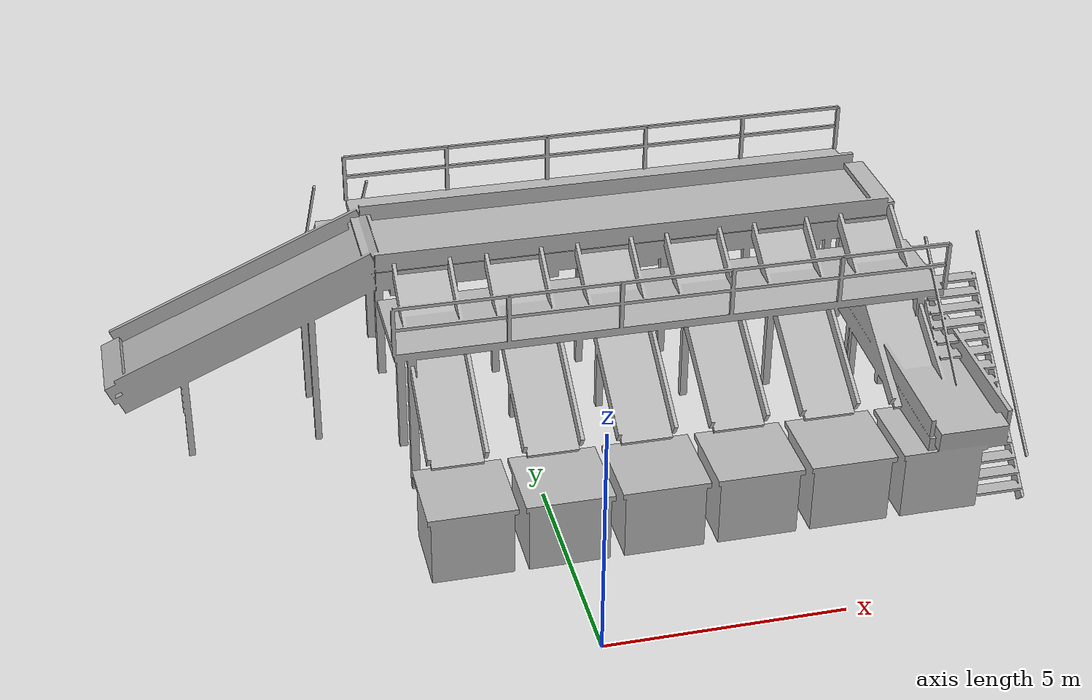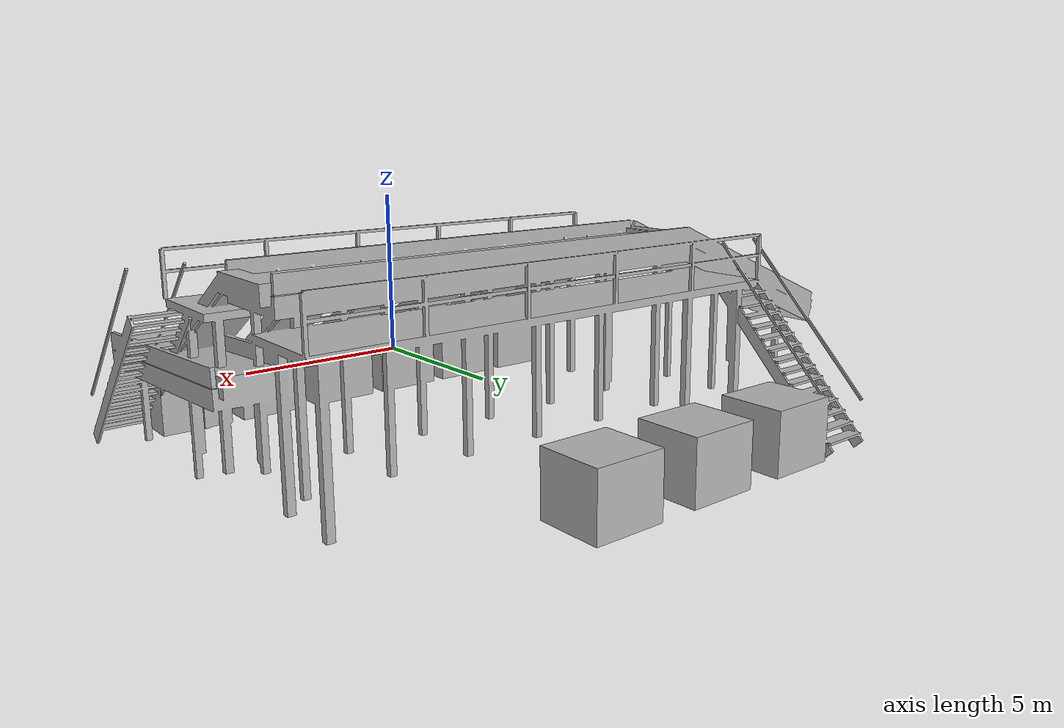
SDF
<?xml version="1.0"?>
<sdf version="1.7">
  <model name="sorting_line">
    <static>true</static>
    <link name="link">
      <visual name="visual">
        <geometry>
          <mesh><uri>model://sorting_line/meshes/sorting_line.obj</uri><scale>1 1 1</scale></mesh>
        </geometry>
      </visual>
      <collision name="collision">
        <geometry>
          <mesh><uri>model://sorting_line/meshes/sorting_line.obj</uri><scale>1 1 1</scale></mesh>
        </geometry>
      </collision>
    </link>
  </model>
</sdf>
